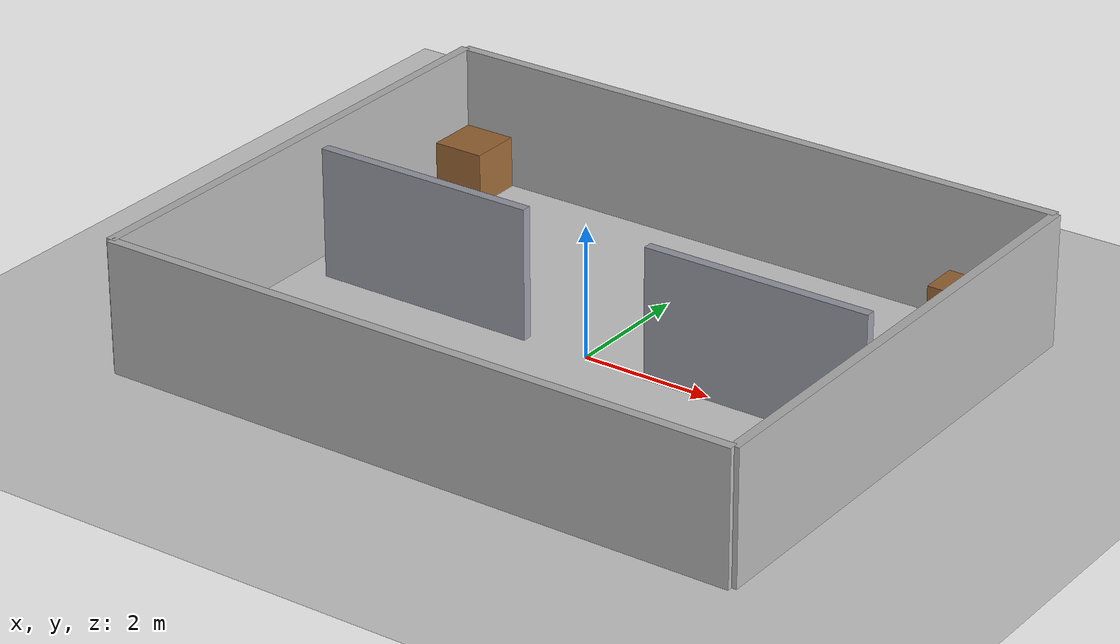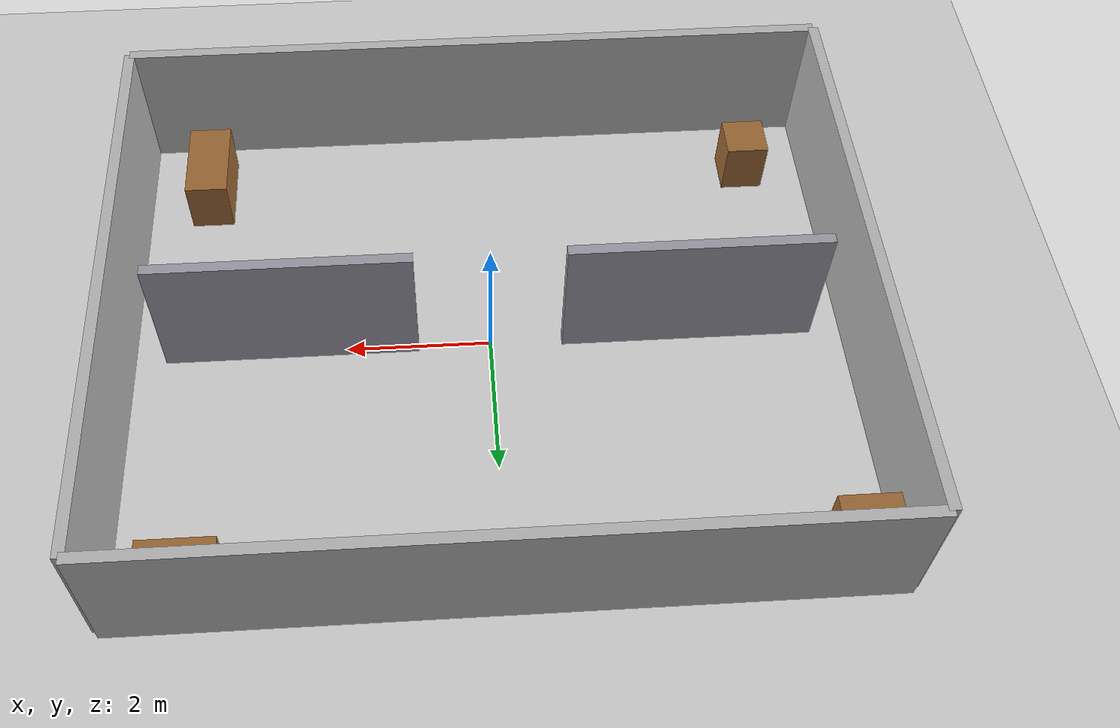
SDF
<?xml version="1.0"?>
<!--
  Simple warehouse world for Sendbooster AGV simulation
  10m x 8m room with corridors and obstacles
-->
<sdf version="1.6">
  <world name="warehouse">

    <!-- Physics: real-time factor -->
    <physics type="ode">
      <real_time_update_rate>1000.0</real_time_update_rate>
      <max_step_size>0.001</max_step_size>
      <real_time_factor>1</real_time_factor>
    </physics>

    <include>
      <uri>model://sun</uri>
    </include>

    <include>
      <uri>model://ground_plane</uri>
    </include>

    <!-- ====== Outer Walls (10m x 8m room, 2m tall, 0.15m thick) ====== -->

    <!-- North wall -->
    <model name="wall_north">
      <static>true</static>
      <pose>0 4.0 1.0 0 0 0</pose>
      <link name="link">
        <collision name="collision">
          <geometry><box><size>10.0 0.15 2.0</size></box></geometry>
        </collision>
        <visual name="visual">
          <geometry><box><size>10.0 0.15 2.0</size></box></geometry>
          <material>
            <ambient>0.7 0.7 0.7 1</ambient>
            <diffuse>0.7 0.7 0.7 1</diffuse>
          </material>
        </visual>
      </link>
    </model>

    <!-- South wall -->
    <model name="wall_south">
      <static>true</static>
      <pose>0 -4.0 1.0 0 0 0</pose>
      <link name="link">
        <collision name="collision">
          <geometry><box><size>10.0 0.15 2.0</size></box></geometry>
        </collision>
        <visual name="visual">
          <geometry><box><size>10.0 0.15 2.0</size></box></geometry>
          <material>
            <ambient>0.7 0.7 0.7 1</ambient>
            <diffuse>0.7 0.7 0.7 1</diffuse>
          </material>
        </visual>
      </link>
    </model>

    <!-- East wall -->
    <model name="wall_east">
      <static>true</static>
      <pose>5.0 0 1.0 0 0 0</pose>
      <link name="link">
        <collision name="collision">
          <geometry><box><size>0.15 8.0 2.0</size></box></geometry>
        </collision>
        <visual name="visual">
          <geometry><box><size>0.15 8.0 2.0</size></box></geometry>
          <material>
            <ambient>0.7 0.7 0.7 1</ambient>
            <diffuse>0.7 0.7 0.7 1</diffuse>
          </material>
        </visual>
      </link>
    </model>

    <!-- West wall -->
    <model name="wall_west">
      <static>true</static>
      <pose>-5.0 0 1.0 0 0 0</pose>
      <link name="link">
        <collision name="collision">
          <geometry><box><size>0.15 8.0 2.0</size></box></geometry>
        </collision>
        <visual name="visual">
          <geometry><box><size>0.15 8.0 2.0</size></box></geometry>
          <material>
            <ambient>0.7 0.7 0.7 1</ambient>
            <diffuse>0.7 0.7 0.7 1</diffuse>
          </material>
        </visual>
      </link>
    </model>

    <!-- ====== Internal Walls (corridors) ====== -->

    <!-- Center divider (with 1.5m gap for passage) -->
    <model name="divider_left">
      <static>true</static>
      <pose>-2.75 0 1.0 0 0 0</pose>
      <link name="link">
        <collision name="collision">
          <geometry><box><size>3.5 0.15 2.0</size></box></geometry>
        </collision>
        <visual name="visual">
          <geometry><box><size>3.5 0.15 2.0</size></box></geometry>
          <material>
            <ambient>0.6 0.6 0.65 1</ambient>
            <diffuse>0.6 0.6 0.65 1</diffuse>
          </material>
        </visual>
      </link>
    </model>

    <model name="divider_right">
      <static>true</static>
      <pose>2.75 0 1.0 0 0 0</pose>
      <link name="link">
        <collision name="collision">
          <geometry><box><size>3.5 0.15 2.0</size></box></geometry>
        </collision>
        <visual name="visual">
          <geometry><box><size>3.5 0.15 2.0</size></box></geometry>
          <material>
            <ambient>0.6 0.6 0.65 1</ambient>
            <diffuse>0.6 0.6 0.65 1</diffuse>
          </material>
        </visual>
      </link>
    </model>

    <!-- ====== Obstacles (boxes simulating shelves/pallets) ====== -->

    <model name="obstacle_1">
      <static>true</static>
      <pose>-4.5 3.5 0.4 0 0 0</pose>
      <link name="link">
        <collision name="collision">
          <geometry><box><size>0.8 0.8 0.8</size></box></geometry>
        </collision>
        <visual name="visual">
          <geometry><box><size>0.8 0.8 0.8</size></box></geometry>
          <material>
            <ambient>0.6 0.4 0.2 1</ambient>
            <diffuse>0.6 0.4 0.2 1</diffuse>
          </material>
        </visual>
      </link>
    </model>

    <model name="obstacle_2">
      <static>true</static>
      <pose>4.0 3.5 0.4 0 0 0</pose>
      <link name="link">
        <collision name="collision">
          <geometry><box><size>1.0 0.6 0.8</size></box></geometry>
        </collision>
        <visual name="visual">
          <geometry><box><size>1.0 0.6 0.8</size></box></geometry>
          <material>
            <ambient>0.6 0.4 0.2 1</ambient>
            <diffuse>0.6 0.4 0.2 1</diffuse>
          </material>
        </visual>
      </link>
    </model>

    <model name="obstacle_3">
      <static>true</static>
      <pose>4.0 -3.0 0.4 0 0 0</pose>
      <link name="link">
        <collision name="collision">
          <geometry><box><size>0.6 1.2 0.8</size></box></geometry>
        </collision>
        <visual name="visual">
          <geometry><box><size>0.6 1.2 0.8</size></box></geometry>
          <material>
            <ambient>0.6 0.4 0.2 1</ambient>
            <diffuse>0.6 0.4 0.2 1</diffuse>
          </material>
        </visual>
      </link>
    </model>

    <model name="obstacle_4">
      <static>true</static>
      <pose>-4.0 -3.0 0.4 0 0 0</pose>
      <link name="link">
        <collision name="collision">
          <geometry><box><size>0.6 0.6 0.8</size></box></geometry>
        </collision>
        <visual name="visual">
          <geometry><box><size>0.6 0.6 0.8</size></box></geometry>
          <material>
            <ambient>0.6 0.4 0.2 1</ambient>
            <diffuse>0.6 0.4 0.2 1</diffuse>
          </material>
        </visual>
      </link>
    </model>

    <!-- Center area kept clear for corridor navigation -->

  </world>
</sdf>
